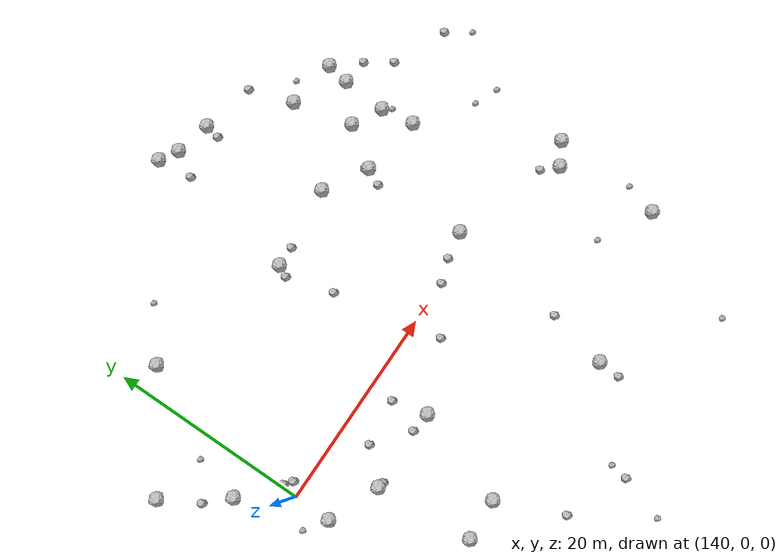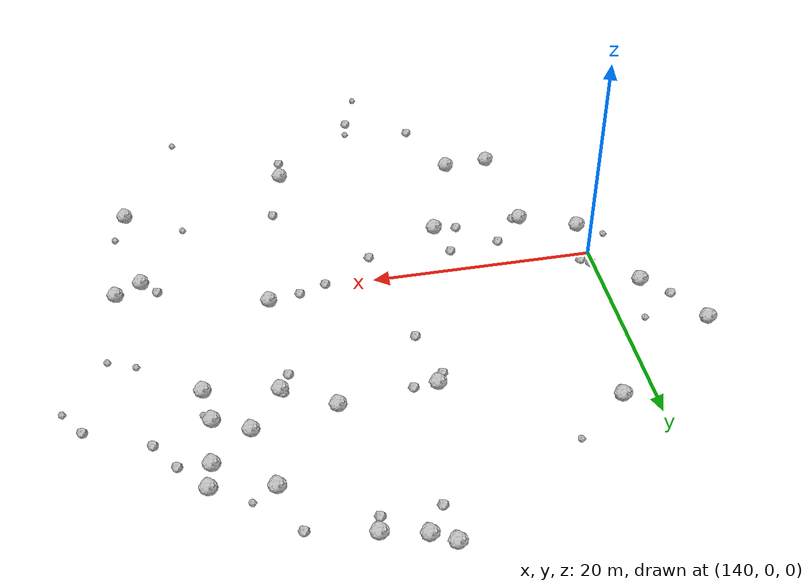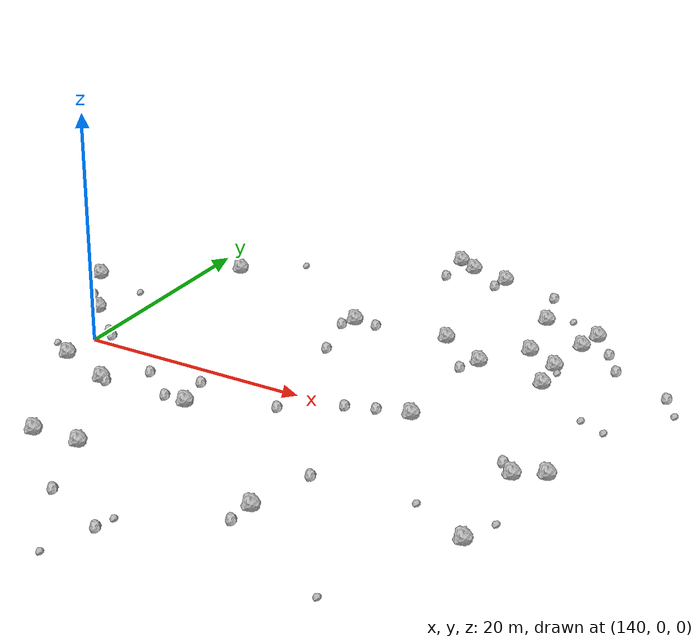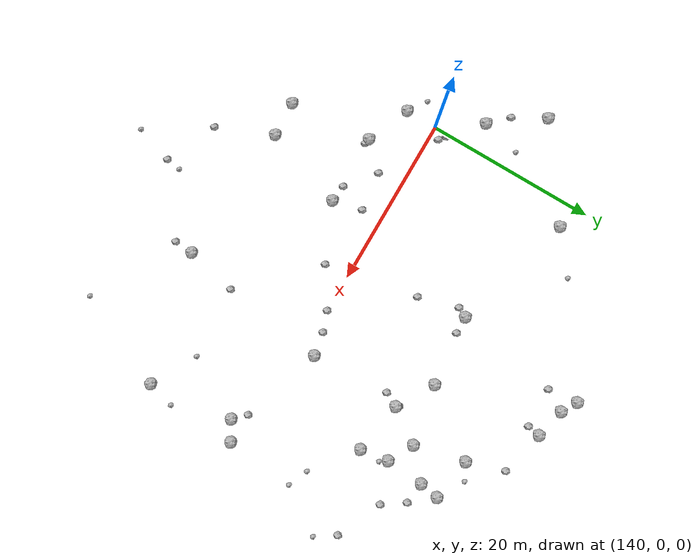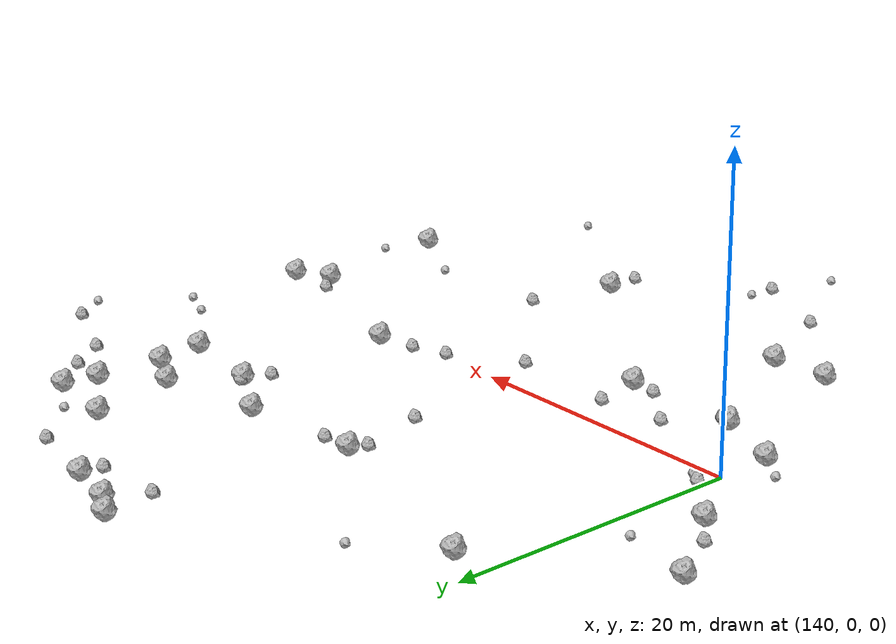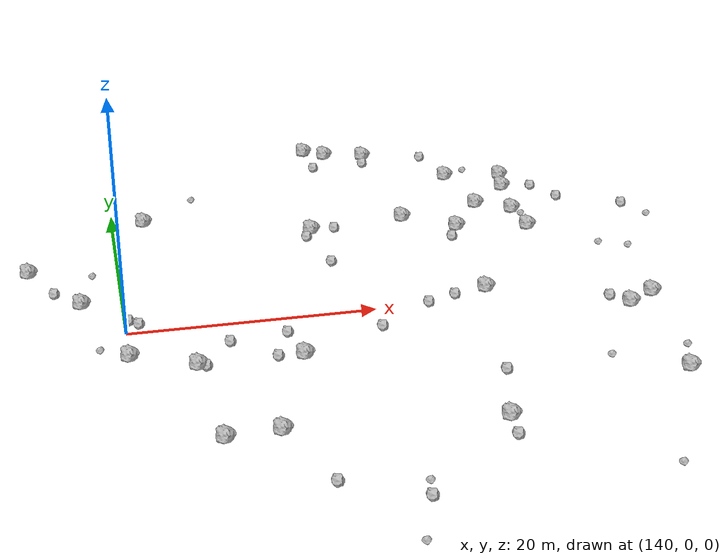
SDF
<sdf version="1.6">
 <world name="default">
  <include><uri>model://sun</uri></include>
  <model name="rock1_4_2">
   <include><uri>model://rock1</uri><pose>140.05601903967704 -3.7261757252732224 0.5 0 0 0</pose></include>
  </model>
  <model name="rock1_4_3">
   <include><uri>model://rock1</uri><pose>164.48902109094226 27.74564922839545 0.5 0 0 0</pose></include>
  </model>
  <model name="rock1_4_4">
   <include><uri>model://rock1</uri><pose>176.04181211045358 11.16705936068022 0.5 0 0 0</pose></include>
  </model>
  <model name="rock1_4_5">
   <include><uri>model://rock1</uri><pose>145.9538758313355 -15.523959755954206 0.5 0 0 0</pose></include>
  </model>
  <model name="rock1_4_6">
   <include><uri>model://rock1</uri><pose>145.09078730274646 -5.850843438410983 0.5 0 0 0</pose></include>
  </model>
  <model name="rock1_4_7">
   <include><uri>model://rock1</uri><pose>150.07034540546007 -15.33635388846271 0.5 0 0 0</pose></include>
  </model>
  <model name="rock1_4_8">
   <include><uri>model://rock1</uri><pose>169.56193326589334 1.3095004290921999 0.5 0 0 0</pose></include>
  </model>
  <model name="rock1_4_9">
   <include><uri>model://rock1</uri><pose>176.33027670106844 21.317206183705956 0.5 0 0 0</pose></include>
  </model>
  <model name="rock1_4_10">
   <include><uri>model://rock1</uri><pose>166.51248667539676 -16.651864008166932 0.5 0 0 0</pose></include>
  </model>
  <model name="rock1_4_11">
   <include><uri>model://rock1</uri><pose>181.6534543677558 -13.012307246451911 0.5 0 0 0</pose></include>
  </model>
  <model name="rock1_4_12">
   <include><uri>model://rock1</uri><pose>171.24850426309285 22.088323006598664 0.5 0 0 0</pose></include>
  </model>
  <model name="rock1_4_13">
   <include><uri>model://rock1</uri><pose>165.50625146623352 14.723781522560543 0.5 0 0 0</pose></include>
  </model>
  <model name="rock1_4_14">
   <include><uri>model://rock1</uri><pose>142.7729485497773 17.969126631192985 0.5 0 0 0</pose></include>
  </model>
  <model name="rock1_4_15">
   <include><uri>model://rock1</uri><pose>172.61141765896517 16.07176940768374 0.5 0 0 0</pose></include>
  </model>
  <model name="rock1_4_16">
   <include><uri>model://rock1</uri><pose>136.77380676739105 4.769165920123761 0.5 0 0 0</pose></include>
  </model>
  <model name="rock1_4_17">
   <include><uri>model://rock1</uri><pose>169.863995272948 12.165155076767313 0.5 0 0 0</pose></include>
  </model>
  <model name="rock1_4_18">
   <include><uri>model://rock1</uri><pose>157.1403919979118 13.859357931766638 0.5 0 0 0</pose></include>
  </model>
  <model name="rock1_4_19">
   <include><uri>model://rock1</uri><pose>182.73701949321293 -1.8635104570699355 0.5 0 0 0</pose></include>
  </model>
  <model name="rock1_4_20">
   <include><uri>model://rock1</uri><pose>159.08499889840778 29.62515850397059 0.5 0 0 0</pose></include>
  </model>
  <model name="rock1_4_21">
   <include><uri>model://rock1</uri><pose>153.2813031594378 -5.873380947357411 0.5 0 0 0</pose></include>
  </model>
  <model name="rock1_4_22">
   <include><uri>model://rock1</uri><pose>175.56432637208383 14.504403608470042 0.5 0 0 0</pose></include>
  </model>
  <model name="rock1_4_23">
   <include><uri>model://rock1</uri><pose>175.92215534068185 19.005500623071462 0.5 0 0 0</pose></include>
  </model>
  <model name="rock1_4_24">
   <include><uri>model://rock1</uri><pose>180.47993446720716 -3.140961384764978 0.5 0 0 0</pose></include>
  </model>
  <model name="rock1_4_25">
   <include><uri>model://rock1</uri><pose>132.65901304992605 10.597340771670225 0.5 0 0 0</pose></include>
  </model>
  <model name="rock1_4_26">
   <include><uri>model://rock1</uri><pose>160.91876337988896 28.567259353807394 0.5 0 0 0</pose></include>
  </model>
  <model name="rock2_4_0">
   <include><uri>model://rock2</uri><pose>152.7743967573291 -21.819351765044228 0.3 0 0 0</pose></include>
  </model>
  <model name="rock2_4_1">
   <include><uri>model://rock2</uri><pose>134.64719826690433 6.921526931374103 0.3 0 0 0</pose></include>
  </model>
  <model name="rock2_4_2">
   <include><uri>model://rock2</uri><pose>151.22002031315358 -5.64365181605957 0.3 0 0 0</pose></include>
  </model>
  <model name="rock2_4_3">
   <include><uri>model://rock2</uri><pose>159.4068052357777 26.123090897032192 0.3 0 0 0</pose></include>
  </model>
  <model name="rock2_4_4">
   <include><uri>model://rock2</uri><pose>164.16204418761976 26.286844826191576 0.3 0 0 0</pose></include>
  </model>
  <model name="rock2_4_5">
   <include><uri>model://rock2</uri><pose>159.95431529654132 -2.87936615843131 0.3 0 0 0</pose></include>
  </model>
  <model name="rock2_4_6">
   <include><uri>model://rock2</uri><pose>159.15060634341688 29.694264747901606 0.3 0 0 0</pose></include>
  </model>
  <model name="rock2_4_7">
   <include><uri>model://rock2</uri><pose>156.51695965595 12.752446649521886 0.3 0 0 0</pose></include>
  </model>
  <model name="rock2_4_8">
   <include><uri>model://rock2</uri><pose>179.09943573729063 -1.7362370975187211 0.3 0 0 0</pose></include>
  </model>
  <model name="rock2_4_9">
   <include><uri>model://rock2</uri><pose>158.71043884258165 -24.54221952571838 0.3 0 0 0</pose></include>
  </model>
  <model name="rock2_4_10">
   <include><uri>model://rock2</uri><pose>164.38359437541115 -0.005039911763194738 0.3 0 0 0</pose></include>
  </model>
  <model name="rock2_4_11">
   <include><uri>model://rock2</uri><pose>140.3212609565697 1.6306945246052749 0.3 0 0 0</pose></include>
  </model>
  <model name="rock2_4_12">
   <include><uri>model://rock2</uri><pose>185.62014124170437 13.862679647328818 0.3 0 0 0</pose></include>
  </model>
  <model name="rock2_4_13">
   <include><uri>model://rock2</uri><pose>166.76120704183933 0.8244980755277709 0.3 0 0 0</pose></include>
  </model>
  <model name="rock2_4_14">
   <include><uri>model://rock2</uri><pose>166.33768292548578 -18.882157531260596 0.3 0 0 0</pose></include>
  </model>
  <model name="rock2_4_15">
   <include><uri>model://rock2</uri><pose>167.85638233290214 -10.702536816465425 0.3 0 0 0</pose></include>
  </model>
  <model name="rock2_4_16">
   <include><uri>model://rock2</uri><pose>159.16522829450108 13.946436204858799 0.3 0 0 0</pose></include>
  </model>
  <model name="rock2_4_17">
   <include><uri>model://rock2</uri><pose>157.84532837219592 8.05946168127467 0.3 0 0 0</pose></include>
  </model>
  <model name="rock2_4_18">
   <include><uri>model://rock2</uri><pose>145.6748444570582 -5.982144679606769 0.3 0 0 0</pose></include>
  </model>
  <model name="rock2_4_19">
   <include><uri>model://rock2</uri><pose>169.62168989686043 12.493285432806246 0.3 0 0 0</pose></include>
  </model>
  <model name="rock2_4_20">
   <include><uri>model://rock2</uri><pose>152.44388638291025 -2.396334051690218 0.3 0 0 0</pose></include>
  </model>
  <model name="rock2_4_21">
   <include><uri>model://rock2</uri><pose>178.51934366532404 18.770093128070613 0.3 0 0 0</pose></include>
  </model>
  <model name="rock2_4_22">
   <include><uri>model://rock2</uri><pose>141.08637181067405 1.0170724998548692 0.3 0 0 0</pose></include>
  </model>
  <model name="rock2_4_23">
   <include><uri>model://rock2</uri><pose>169.82812468687797 26.572332707486645 0.3 0 0 0</pose></include>
  </model>
  <model name="rock2_4_24">
   <include><uri>model://rock2</uri><pose>168.98525173149278 10.52618239713285 0.3 0 0 0</pose></include>
  </model>
  <model name="rock2_4_25">
   <include><uri>model://rock2</uri><pose>180.2374758370353 16.24371599455857 0.3 0 0 0</pose></include>
  </model>
  <model name="rock2_4_26">
   <include><uri>model://rock2</uri><pose>147.85438411936735 -2.9314884815751263 0.3 0 0 0</pose></include>
  </model>
  <model name="rock3_4_0">
   <include><uri>model://rock3</uri><pose>176.3566965249683 -10.184764440593032 0.2 0 0 0</pose></include>
  </model>
  <model name="rock3_4_1">
   <include><uri>model://rock3</uri><pose>183.55240040807524 6.231781853393613 0.2 0 0 0</pose></include>
  </model>
  <model name="rock3_4_2">
   <include><uri>model://rock3</uri><pose>173.19570852395245 23.162013802842296 0.2 0 0 0</pose></include>
  </model>
  <model name="rock3_4_3">
   <include><uri>model://rock3</uri><pose>158.98481706984057 -22.86787110806126 0.2 0 0 0</pose></include>
  </model>
  <model name="rock3_4_4">
   <include><uri>model://rock3</uri><pose>157.23456200231936 -28.995517004827253 0.2 0 0 0</pose></include>
  </model>
  <model name="rock3_4_5">
   <include><uri>model://rock3</uri><pose>176.13549842671904 13.679232204627056 0.2 0 0 0</pose></include>
  </model>
  <model name="rock3_4_6">
   <include><uri>model://rock3</uri><pose>187.18562002941874 11.511892209233068 0.2 0 0 0</pose></include>
  </model>
  <model name="rock3_4_7">
   <include><uri>model://rock3</uri><pose>182.59106617706348 -9.889605405168812 0.2 0 0 0</pose></include>
  </model>
  <model name="rock3_4_8">
   <include><uri>model://rock3</uri><pose>137.82269284298124 9.380634953356484 0.2 0 0 0</pose></include>
  </model>
  <model name="rock3_4_9">
   <include><uri>model://rock3</uri><pose>147.3359298903369 21.734493871058028 0.2 0 0 0</pose></include>
  </model>
  <model name="rock3_4_10">
   <include><uri>model://rock3</uri><pose>137.85167103766406 -2.2973563099304215 0.2 0 0 0</pose></include>
  </model>
  <model name="rock3_4_11">
   <include><uri>model://rock3</uri><pose>181.21580690903258 7.211745259813853 0.2 0 0 0</pose></include>
  </model>
  <model name="rock3_4_12">
   <include><uri>model://rock3</uri><pose>176.5992636677344 -24.17935357689995 0.2 0 0 0</pose></include>
  </model>
 </world>
</sdf>
